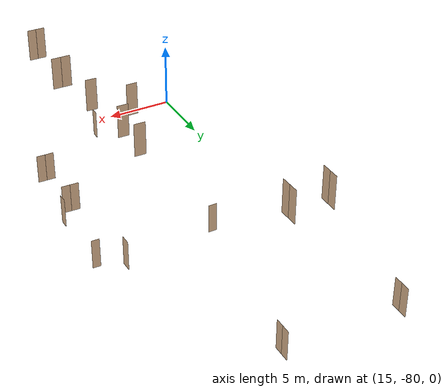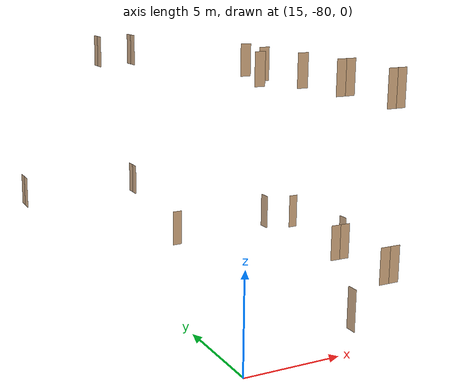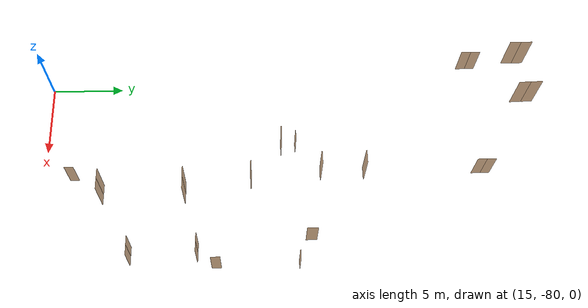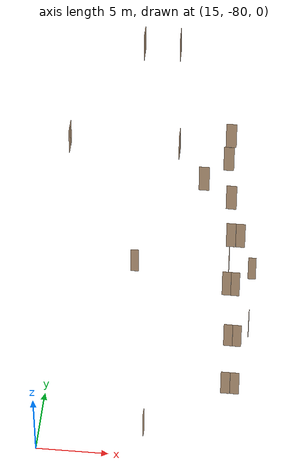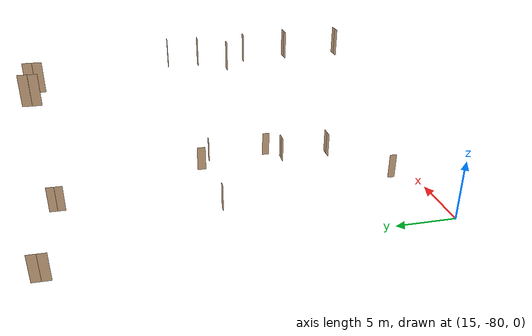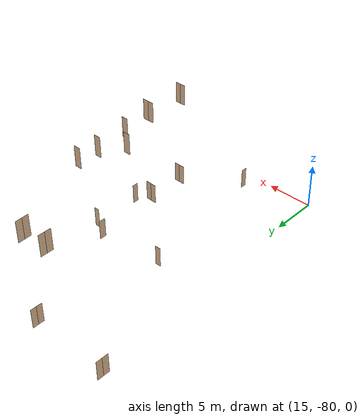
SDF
<sdf version="1.7">
 <world name="sim_world">
  <model name="door3">
   <pose>27.847318445650217 -73.7472066650835 0.0 0 0 3.1348896198746576</pose>
   <link name="right">
    <pose>0.3232117227131276 0 1.11 0 0 0</pose>
    <visual name="right_visual">
     <geometry><box><size>0.6364234454262552 0.03 2.2</size></box></geometry>
     <material>
      <ambient>0.5 0.25 0 0.6</ambient>
      <diffuse>0.5 0.25 0 0.6</diffuse>
      <pbr><metal><metalness>0.0</metalness></metal></pbr>
     </material>
    </visual>
    <collision name="right_collision">
     <geometry><box><size>0.6364234454262552 0.03 2.2</size></box></geometry>
     <surface><contact><collide_bitmask>0x02</collide_bitmask></contact></surface>
    </collision>
    <inertial>
     <mass>50.0</mass>
     <inertia><ixx>20.17041666666667</ixx><iyy>21.85431167453428</iyy><izz>1.6913950078676068</izz></inertia>
    </inertial>
   </link>
   <joint name="right_joint" type="revolute">
    <parent>world</parent>
    <child>right</child>
    <axis><xyz>0 0 1</xyz><limit><lower>0</lower><upper>1.57</upper></limit></axis>
    <pose>0.3232117227131276 0 0 0 0 0</pose>
   </joint>
   <link name="left">
    <pose>-0.3232117227131276 0 1.11 0 0 0</pose>
    <visual name="left_visual">
     <geometry><box><size>0.6364234454262552 0.03 2.2</size></box></geometry>
     <material>
      <ambient>0.5 0.25 0 0.6</ambient>
      <diffuse>0.5 0.25 0 0.6</diffuse>
      <pbr><metal><metalness>0.0</metalness></metal></pbr>
     </material>
    </visual>
    <collision name="left_collision">
     <geometry><box><size>0.6364234454262552 0.03 2.2</size></box></geometry>
     <surface><contact><collide_bitmask>0x02</collide_bitmask></contact></surface>
    </collision>
    <inertial>
     <mass>50.0</mass>
     <inertia><ixx>20.17041666666667</ixx><iyy>21.85431167453428</iyy><izz>1.6913950078676068</izz></inertia>
    </inertial>
   </link>
   <joint name="left_joint" type="revolute">
    <parent>world</parent>
    <child>left</child>
    <axis><xyz>0 0 1</xyz><limit><lower>-1.57</lower><upper>0</upper></limit></axis>
    <pose>-0.3232117227131276 0 0 0 0 0</pose>
   </joint>
   <plugin name="register_component" filename="libregister_component.so">
    <component name="Door">
     <v_max_door>0.5</v_max_door>
     <a_max_door>0.3</a_max_door>
     <a_nom_door>0.15</a_nom_door>
     <dx_min_door>0.01</dx_min_door>
     <f_max_door>500.0</f_max_door>
     <ros_interface>true</ros_interface>
     <door name="door3" type="DoubleSwingDoor" left_joint_name="left_joint" right_joint_name="right_joint"/>
    </component>
   </plugin>
  </model>
  <model name="door2">
   <pose>22.211782101604086 -77.9055350099353 0.0 0 0 1.5613574322392048</pose>
   <link name="right">
    <pose>0 0 1.11 0 0 0</pose>
    <visual name="right_visual">
     <geometry><box><size>0.6194818811056692 0.03 2.2</size></box></geometry>
     <material>
      <ambient>0.5 0.25 0 0.6</ambient>
      <diffuse>0.5 0.25 0 0.6</diffuse>
      <pbr><metal><metalness>0.0</metalness></metal></pbr>
     </material>
    </visual>
    <collision name="right_collision">
     <geometry><box><size>0.6194818811056692 0.03 2.2</size></box></geometry>
     <surface><contact><collide_bitmask>0x02</collide_bitmask></contact></surface>
    </collision>
    <inertial>
     <mass>50.0</mass>
     <inertia><ixx>20.17041666666667</ixx><iyy>21.76565750424258</iyy><izz>1.6027408375759102</izz></inertia>
    </inertial>
   </link>
   <joint name="right_joint" type="revolute">
    <parent>world</parent>
    <child>right</child>
    <axis><xyz>0 0 -1</xyz><limit><lower>0</lower><upper>1.57</upper></limit></axis>
    <pose>0.3147409405528346 0 0 0 0 0</pose>
   </joint>
   <plugin name="register_component" filename="libregister_component.so">
    <component name="Door">
     <v_max_door>0.5</v_max_door>
     <a_max_door>0.3</a_max_door>
     <a_nom_door>0.15</a_nom_door>
     <dx_min_door>0.01</dx_min_door>
     <f_max_door>500.0</f_max_door>
     <ros_interface>true</ros_interface>
     <door name="door2" type="SwingDoor" left_joint_name="empty_joint" right_joint_name="right_joint"/>
    </component>
   </plugin>
  </model>
  <model name="door4">
   <pose>27.7079244754704 -69.25606597808076 0.0 0 0 3.119050205000111</pose>
   <link name="right">
    <pose>0.3175972304814701 0 1.11 0 0 0</pose>
    <visual name="right_visual">
     <geometry><box><size>0.6251944609629402 0.03 2.2</size></box></geometry>
     <material>
      <ambient>0.5 0.25 0 0.6</ambient>
      <diffuse>0.5 0.25 0 0.6</diffuse>
      <pbr><metal><metalness>0.0</metalness></metal></pbr>
     </material>
    </visual>
    <collision name="right_collision">
     <geometry><box><size>0.6251944609629402 0.03 2.2</size></box></geometry>
     <surface><contact><collide_bitmask>0x02</collide_bitmask></contact></surface>
    </collision>
    <inertial>
     <mass>50.0</mass>
     <inertia><ixx>20.17041666666667</ixx><iyy>21.795283808411426</iyy><izz>1.6323671417447556</izz></inertia>
    </inertial>
   </link>
   <joint name="right_joint" type="revolute">
    <parent>world</parent>
    <child>right</child>
    <axis><xyz>0 0 -1</xyz><limit><lower>0</lower><upper>1.57</upper></limit></axis>
    <pose>0.3175972304814701 0 0 0 0 0</pose>
   </joint>
   <link name="left">
    <pose>-0.3175972304814701 0 1.11 0 0 0</pose>
    <visual name="left_visual">
     <geometry><box><size>0.6251944609629402 0.03 2.2</size></box></geometry>
     <material>
      <ambient>0.5 0.25 0 0.6</ambient>
      <diffuse>0.5 0.25 0 0.6</diffuse>
      <pbr><metal><metalness>0.0</metalness></metal></pbr>
     </material>
    </visual>
    <collision name="left_collision">
     <geometry><box><size>0.6251944609629402 0.03 2.2</size></box></geometry>
     <surface><contact><collide_bitmask>0x02</collide_bitmask></contact></surface>
    </collision>
    <inertial>
     <mass>50.0</mass>
     <inertia><ixx>20.17041666666667</ixx><iyy>21.795283808411426</iyy><izz>1.6323671417447556</izz></inertia>
    </inertial>
   </link>
   <joint name="left_joint" type="revolute">
    <parent>world</parent>
    <child>left</child>
    <axis><xyz>0 0 -1</xyz><limit><lower>-1.57</lower><upper>0</upper></limit></axis>
    <pose>-0.3175972304814701 0 0 0 0 0</pose>
   </joint>
   <plugin name="register_component" filename="libregister_component.so">
    <component name="Door">
     <v_max_door>0.5</v_max_door>
     <a_max_door>0.3</a_max_door>
     <a_nom_door>0.15</a_nom_door>
     <dx_min_door>0.01</dx_min_door>
     <f_max_door>500.0</f_max_door>
     <ros_interface>true</ros_interface>
     <door name="door4" type="DoubleSwingDoor" left_joint_name="left_joint" right_joint_name="right_joint"/>
    </component>
   </plugin>
  </model>
  <model name="door6">
   <pose>28.772399377181465 -67.984536180234 0.0 0 0 1.589006458082369</pose>
   <link name="right">
    <pose>0 0 1.11 0 0 0</pose>
    <visual name="right_visual">
     <geometry><box><size>0.633037573122654 0.03 2.2</size></box></geometry>
     <material>
      <ambient>0.5 0.25 0 0.6</ambient>
      <diffuse>0.5 0.25 0 0.6</diffuse>
      <pbr><metal><metalness>0.0</metalness></metal></pbr>
     </material>
    </visual>
    <collision name="right_collision">
     <geometry><box><size>0.633037573122654 0.03 2.2</size></box></geometry>
     <surface><contact><collide_bitmask>0x02</collide_bitmask></contact></surface>
    </collision>
    <inertial>
     <mass>50.0</mass>
     <inertia><ixx>20.17041666666667</ixx><iyy>21.83640237077092</iyy><izz>1.673485704104248</izz></inertia>
    </inertial>
   </link>
   <joint name="right_joint" type="revolute">
    <parent>world</parent>
    <child>right</child>
    <axis><xyz>0 0 -1</xyz><limit><lower>0</lower><upper>1.57</upper></limit></axis>
    <pose>0.321518786561327 0 0 0 0 0</pose>
   </joint>
   <plugin name="register_component" filename="libregister_component.so">
    <component name="Door">
     <v_max_door>0.5</v_max_door>
     <a_max_door>0.3</a_max_door>
     <a_nom_door>0.15</a_nom_door>
     <dx_min_door>0.01</dx_min_door>
     <f_max_door>500.0</f_max_door>
     <ros_interface>true</ros_interface>
     <door name="door6" type="SwingDoor" left_joint_name="empty_joint" right_joint_name="right_joint"/>
    </component>
   </plugin>
  </model>
  <model name="door7">
   <pose>20.006505440822856 -62.49707422929499 0.0 0 0 -3.117601081888637</pose>
   <link name="right">
    <pose>0 0 1.11 0 0 0</pose>
    <visual name="right_visual">
     <geometry><box><size>0.5964999086840153 0.03 2.2</size></box></geometry>
     <material>
      <ambient>0.5 0.25 0 0.6</ambient>
      <diffuse>0.5 0.25 0 0.6</diffuse>
      <pbr><metal><metalness>0.0</metalness></metal></pbr>
     </material>
    </visual>
    <collision name="right_collision">
     <geometry><box><size>0.5964999086840153 0.03 2.2</size></box></geometry>
     <surface><contact><collide_bitmask>0x02</collide_bitmask></contact></surface>
    </collision>
    <inertial>
     <mass>50.0</mass>
     <inertia><ixx>20.17041666666667</ixx><iyy>21.649217254416833</iyy><izz>1.4863005877501607</izz></inertia>
    </inertial>
   </link>
   <joint name="right_joint" type="revolute">
    <parent>world</parent>
    <child>right</child>
    <axis><xyz>0 0 -1</xyz><limit><lower>0</lower><upper>1.57</upper></limit></axis>
    <pose>0.30324995434200763 0 0 0 0 0</pose>
   </joint>
   <plugin name="register_component" filename="libregister_component.so">
    <component name="Door">
     <v_max_door>0.5</v_max_door>
     <a_max_door>0.3</a_max_door>
     <a_nom_door>0.15</a_nom_door>
     <dx_min_door>0.01</dx_min_door>
     <f_max_door>500.0</f_max_door>
     <ros_interface>true</ros_interface>
     <door name="door7" type="SwingDoor" left_joint_name="empty_joint" right_joint_name="right_joint"/>
    </component>
   </plugin>
  </model>
  <model name="door8">
   <pose>28.657583031850905 -62.48891550123477 0.0 0 0 -3.138557686043698</pose>
   <link name="right">
    <pose>0 0 1.11 0 0 0</pose>
    <visual name="right_visual">
     <geometry><box><size>0.5725329680564498 0.03 2.2</size></box></geometry>
     <material>
      <ambient>0.5 0.25 0 0.6</ambient>
      <diffuse>0.5 0.25 0 0.6</diffuse>
      <pbr><metal><metalness>0.0</metalness></metal></pbr>
     </material>
    </visual>
    <collision name="right_collision">
     <geometry><box><size>0.5725329680564498 0.03 2.2</size></box></geometry>
     <surface><contact><collide_bitmask>0x02</collide_bitmask></contact></surface>
    </collision>
    <inertial>
     <mass>50.0</mass>
     <inertia><ixx>20.17041666666667</ixx><iyy>21.5324749979647</iyy><izz>1.3695583312980326</izz></inertia>
    </inertial>
   </link>
   <joint name="right_joint" type="revolute">
    <parent>world</parent>
    <child>right</child>
    <axis><xyz>0 0 1</xyz><limit><lower>0</lower><upper>1.57</upper></limit></axis>
    <pose>0.2912664840282249 0 0 0 0 0</pose>
   </joint>
   <plugin name="register_component" filename="libregister_component.so">
    <component name="Door">
     <v_max_door>0.5</v_max_door>
     <a_max_door>0.3</a_max_door>
     <a_nom_door>0.15</a_nom_door>
     <dx_min_door>0.01</dx_min_door>
     <f_max_door>500.0</f_max_door>
     <ros_interface>true</ros_interface>
     <door name="door8" type="SwingDoor" left_joint_name="empty_joint" right_joint_name="right_joint"/>
    </component>
   </plugin>
  </model>
  <model name="door11">
   <pose>26.91586124352129 -61.62542354706751 0.0 0 0 1.590140119046647</pose>
   <link name="right">
    <pose>0 0 1.11 0 0 0</pose>
    <visual name="right_visual">
     <geometry><box><size>0.748193471785033 0.03 2.2</size></box></geometry>
     <material>
      <ambient>0.5 0.25 0 0.6</ambient>
      <diffuse>0.5 0.25 0 0.6</diffuse>
      <pbr><metal><metalness>0.0</metalness></metal></pbr>
     </material>
    </visual>
    <collision name="right_collision">
     <geometry><box><size>0.748193471785033 0.03 2.2</size></box></geometry>
     <surface><contact><collide_bitmask>0x02</collide_bitmask></contact></surface>
    </collision>
    <inertial>
     <mass>50.0</mass>
     <inertia><ixx>20.17041666666667</ixx><iyy>22.499139463423923</iyy><izz>2.3362227967572546</izz></inertia>
    </inertial>
   </link>
   <joint name="right_joint" type="revolute">
    <parent>world</parent>
    <child>right</child>
    <axis><xyz>0 0 1</xyz><limit><lower>0</lower><upper>1.57</upper></limit></axis>
    <pose>0.3790967358925165 0 0 0 0 0</pose>
   </joint>
   <plugin name="register_component" filename="libregister_component.so">
    <component name="Door">
     <v_max_door>0.5</v_max_door>
     <a_max_door>0.3</a_max_door>
     <a_nom_door>0.15</a_nom_door>
     <dx_min_door>0.01</dx_min_door>
     <f_max_door>500.0</f_max_door>
     <ros_interface>true</ros_interface>
     <door name="door11" type="SwingDoor" left_joint_name="empty_joint" right_joint_name="right_joint"/>
    </component>
   </plugin>
  </model>
  <model name="door21_end">
   <pose>22.19549362853182 -49.59114025148065 0.0 0 0 1.5724148541161638</pose>
   <link name="right">
    <pose>0.3178502598575547 0 1.11 0 0 0</pose>
    <visual name="right_visual">
     <geometry><box><size>0.6257005197151094 0.03 2.2</size></box></geometry>
     <material>
      <ambient>0.5 0.25 0 0.6</ambient>
      <diffuse>0.5 0.25 0 0.6</diffuse>
      <pbr><metal><metalness>0.0</metalness></metal></pbr>
     </material>
    </visual>
    <collision name="right_collision">
     <geometry><box><size>0.6257005197151094 0.03 2.2</size></box></geometry>
     <surface><contact><collide_bitmask>0x02</collide_bitmask></contact></surface>
    </collision>
    <inertial>
     <mass>50.0</mass>
     <inertia><ixx>20.17041666666667</ixx><iyy>21.79792141821566</iyy><izz>1.635004751548992</izz></inertia>
    </inertial>
   </link>
   <joint name="right_joint" type="revolute">
    <parent>world</parent>
    <child>right</child>
    <axis><xyz>0 0 -1</xyz><limit><lower>0</lower><upper>1.57</upper></limit></axis>
    <pose>0.3178502598575547 0 0 0 0 0</pose>
   </joint>
   <link name="left">
    <pose>-0.3178502598575547 0 1.11 0 0 0</pose>
    <visual name="left_visual">
     <geometry><box><size>0.6257005197151094 0.03 2.2</size></box></geometry>
     <material>
      <ambient>0.5 0.25 0 0.6</ambient>
      <diffuse>0.5 0.25 0 0.6</diffuse>
      <pbr><metal><metalness>0.0</metalness></metal></pbr>
     </material>
    </visual>
    <collision name="left_collision">
     <geometry><box><size>0.6257005197151094 0.03 2.2</size></box></geometry>
     <surface><contact><collide_bitmask>0x02</collide_bitmask></contact></surface>
    </collision>
    <inertial>
     <mass>50.0</mass>
     <inertia><ixx>20.17041666666667</ixx><iyy>21.79792141821566</iyy><izz>1.635004751548992</izz></inertia>
    </inertial>
   </link>
   <joint name="left_joint" type="revolute">
    <parent>world</parent>
    <child>left</child>
    <axis><xyz>0 0 -1</xyz><limit><lower>-1.57</lower><upper>0</upper></limit></axis>
    <pose>-0.3178502598575547 0 0 0 0 0</pose>
   </joint>
   <plugin name="register_component" filename="libregister_component.so">
    <component name="Door">
     <v_max_door>0.5</v_max_door>
     <a_max_door>0.3</a_max_door>
     <a_nom_door>0.15</a_nom_door>
     <dx_min_door>0.01</dx_min_door>
     <f_max_door>500.0</f_max_door>
     <ros_interface>true</ros_interface>
     <door name="door21_end" type="DoubleSwingDoor" left_joint_name="left_joint" right_joint_name="right_joint"/>
    </component>
   </plugin>
  </model>
  <model name="door19">
   <pose>13.633176622528351 -49.584706014786626 0.0 0 0 1.5709468288255375</pose>
   <link name="right">
    <pose>0.3370076421904802 0 1.11 0 0 0</pose>
    <visual name="right_visual">
     <geometry><box><size>0.6640152843809604 0.03 2.2</size></box></geometry>
     <material>
      <ambient>0.5 0.25 0 0.6</ambient>
      <diffuse>0.5 0.25 0 0.6</diffuse>
      <pbr><metal><metalness>0.0</metalness></metal></pbr>
     </material>
    </visual>
    <collision name="right_collision">
     <geometry><box><size>0.6640152843809604 0.03 2.2</size></box></geometry>
     <surface><contact><collide_bitmask>0x02</collide_bitmask></contact></surface>
    </collision>
    <inertial>
     <mass>50.0</mass>
     <inertia><ixx>20.17041666666667</ixx><iyy>22.00381790788137</iyy><izz>1.8409012412146988</izz></inertia>
    </inertial>
   </link>
   <joint name="right_joint" type="revolute">
    <parent>world</parent>
    <child>right</child>
    <axis><xyz>0 0 -1</xyz><limit><lower>0</lower><upper>1.57</upper></limit></axis>
    <pose>0.3370076421904802 0 0 0 0 0</pose>
   </joint>
   <link name="left">
    <pose>-0.3370076421904802 0 1.11 0 0 0</pose>
    <visual name="left_visual">
     <geometry><box><size>0.6640152843809604 0.03 2.2</size></box></geometry>
     <material>
      <ambient>0.5 0.25 0 0.6</ambient>
      <diffuse>0.5 0.25 0 0.6</diffuse>
      <pbr><metal><metalness>0.0</metalness></metal></pbr>
     </material>
    </visual>
    <collision name="left_collision">
     <geometry><box><size>0.6640152843809604 0.03 2.2</size></box></geometry>
     <surface><contact><collide_bitmask>0x02</collide_bitmask></contact></surface>
    </collision>
    <inertial>
     <mass>50.0</mass>
     <inertia><ixx>20.17041666666667</ixx><iyy>22.00381790788137</iyy><izz>1.8409012412146988</izz></inertia>
    </inertial>
   </link>
   <joint name="left_joint" type="revolute">
    <parent>world</parent>
    <child>left</child>
    <axis><xyz>0 0 -1</xyz><limit><lower>-1.57</lower><upper>0</upper></limit></axis>
    <pose>-0.3370076421904802 0 0 0 0 0</pose>
   </joint>
   <plugin name="register_component" filename="libregister_component.so">
    <component name="Door">
     <v_max_door>0.5</v_max_door>
     <a_max_door>0.3</a_max_door>
     <a_nom_door>0.15</a_nom_door>
     <dx_min_door>0.01</dx_min_door>
     <f_max_door>500.0</f_max_door>
     <ros_interface>true</ros_interface>
     <door name="door19" type="DoubleSwingDoor" left_joint_name="left_joint" right_joint_name="right_joint"/>
    </component>
   </plugin>
  </model>
  <model name="N1_door2">
   <pose>27.66805272260334 -73.75293895608013 10.0 0 0 3.134782744586234</pose>
   <link name="right">
    <pose>0.293878937184789 0 1.11 0 0 0</pose>
    <visual name="right_visual">
     <geometry><box><size>0.577757874369578 0.03 2.2</size></box></geometry>
     <material>
      <ambient>0.5 0.25 0 0.6</ambient>
      <diffuse>0.5 0.25 0 0.6</diffuse>
      <pbr><metal><metalness>0.0</metalness></metal></pbr>
     </material>
    </visual>
    <collision name="right_collision">
     <geometry><box><size>0.577757874369578 0.03 2.2</size></box></geometry>
     <surface><contact><collide_bitmask>0x02</collide_bitmask></contact></surface>
    </collision>
    <inertial>
     <mass>50.0</mass>
     <inertia><ixx>20.17041666666667</ixx><iyy>21.557517339150223</iyy><izz>1.394600672483555</izz></inertia>
    </inertial>
   </link>
   <joint name="right_joint" type="revolute">
    <parent>world</parent>
    <child>right</child>
    <axis><xyz>0 0 1</xyz><limit><lower>0</lower><upper>1.57</upper></limit></axis>
    <pose>0.293878937184789 0 0 0 0 0</pose>
   </joint>
   <link name="left">
    <pose>-0.293878937184789 0 1.11 0 0 0</pose>
    <visual name="left_visual">
     <geometry><box><size>0.577757874369578 0.03 2.2</size></box></geometry>
     <material>
      <ambient>0.5 0.25 0 0.6</ambient>
      <diffuse>0.5 0.25 0 0.6</diffuse>
      <pbr><metal><metalness>0.0</metalness></metal></pbr>
     </material>
    </visual>
    <collision name="left_collision">
     <geometry><box><size>0.577757874369578 0.03 2.2</size></box></geometry>
     <surface><contact><collide_bitmask>0x02</collide_bitmask></contact></surface>
    </collision>
    <inertial>
     <mass>50.0</mass>
     <inertia><ixx>20.17041666666667</ixx><iyy>21.557517339150223</iyy><izz>1.394600672483555</izz></inertia>
    </inertial>
   </link>
   <joint name="left_joint" type="revolute">
    <parent>world</parent>
    <child>left</child>
    <axis><xyz>0 0 1</xyz><limit><lower>-1.57</lower><upper>0</upper></limit></axis>
    <pose>-0.293878937184789 0 0 0 0 0</pose>
   </joint>
   <plugin name="register_component" filename="libregister_component.so">
    <component name="Door">
     <v_max_door>0.5</v_max_door>
     <a_max_door>0.3</a_max_door>
     <a_nom_door>0.15</a_nom_door>
     <dx_min_door>0.01</dx_min_door>
     <f_max_door>500.0</f_max_door>
     <ros_interface>true</ros_interface>
     <door name="N1_door2" type="DoubleSwingDoor" left_joint_name="left_joint" right_joint_name="right_joint"/>
    </component>
   </plugin>
  </model>
  <model name="N1_door4">
   <pose>27.66901645585712 -69.17747448492554 10.0 0 0 -3.1410845969289958</pose>
   <link name="right">
    <pose>0.3217449040681913 0 1.11 0 0 0</pose>
    <visual name="right_visual">
     <geometry><box><size>0.6334898081363826 0.03 2.2</size></box></geometry>
     <material>
      <ambient>0.5 0.25 0 0.6</ambient>
      <diffuse>0.5 0.25 0 0.6</diffuse>
      <pbr><metal><metalness>0.0</metalness></metal></pbr>
     </material>
    </visual>
    <collision name="right_collision">
     <geometry><box><size>0.6334898081363826 0.03 2.2</size></box></geometry>
     <surface><contact><collide_bitmask>0x02</collide_bitmask></contact></surface>
    </collision>
    <inertial>
     <mass>50.0</mass>
     <inertia><ixx>20.17041666666667</ixx><iyy>21.838788904219467</iyy><izz>1.6758722375527952</izz></inertia>
    </inertial>
   </link>
   <joint name="right_joint" type="revolute">
    <parent>world</parent>
    <child>right</child>
    <axis><xyz>0 0 -1</xyz><limit><lower>0</lower><upper>1.57</upper></limit></axis>
    <pose>0.3217449040681913 0 0 0 0 0</pose>
   </joint>
   <link name="left">
    <pose>-0.3217449040681913 0 1.11 0 0 0</pose>
    <visual name="left_visual">
     <geometry><box><size>0.6334898081363826 0.03 2.2</size></box></geometry>
     <material>
      <ambient>0.5 0.25 0 0.6</ambient>
      <diffuse>0.5 0.25 0 0.6</diffuse>
      <pbr><metal><metalness>0.0</metalness></metal></pbr>
     </material>
    </visual>
    <collision name="left_collision">
     <geometry><box><size>0.6334898081363826 0.03 2.2</size></box></geometry>
     <surface><contact><collide_bitmask>0x02</collide_bitmask></contact></surface>
    </collision>
    <inertial>
     <mass>50.0</mass>
     <inertia><ixx>20.17041666666667</ixx><iyy>21.838788904219467</iyy><izz>1.6758722375527952</izz></inertia>
    </inertial>
   </link>
   <joint name="left_joint" type="revolute">
    <parent>world</parent>
    <child>left</child>
    <axis><xyz>0 0 -1</xyz><limit><lower>-1.57</lower><upper>0</upper></limit></axis>
    <pose>-0.3217449040681913 0 0 0 0 0</pose>
   </joint>
   <plugin name="register_component" filename="libregister_component.so">
    <component name="Door">
     <v_max_door>0.5</v_max_door>
     <a_max_door>0.3</a_max_door>
     <a_nom_door>0.15</a_nom_door>
     <dx_min_door>0.01</dx_min_door>
     <f_max_door>500.0</f_max_door>
     <ros_interface>true</ros_interface>
     <door name="N1_door4" type="DoubleSwingDoor" left_joint_name="left_joint" right_joint_name="right_joint"/>
    </component>
   </plugin>
  </model>
  <model name="N1_door5">
   <pose>27.111255211262197 -65.51093427778248 10.0 0 0 3.1066954294134708</pose>
   <link name="right">
    <pose>0 0 1.11 0 0 0</pose>
    <visual name="right_visual">
     <geometry><box><size>0.7252785671526952 0.03 2.2</size></box></geometry>
     <material>
      <ambient>0.5 0.25 0 0.6</ambient>
      <diffuse>0.5 0.25 0 0.6</diffuse>
      <pbr><metal><metalness>0.0</metalness></metal></pbr>
     </material>
    </visual>
    <collision name="right_collision">
     <geometry><box><size>0.7252785671526952 0.03 2.2</size></box></geometry>
     <surface><contact><collide_bitmask>0x02</collide_bitmask></contact></surface>
    </collision>
    <inertial>
     <mass>50.0</mass>
     <inertia><ixx>20.17041666666667</ixx><iyy>22.358454166546117</iyy><izz>2.195537499879445</izz></inertia>
    </inertial>
   </link>
   <joint name="right_joint" type="revolute">
    <parent>world</parent>
    <child>right</child>
    <axis><xyz>0 0 1</xyz><limit><lower>0</lower><upper>1.57</upper></limit></axis>
    <pose>0.3676392835763476 0 0 0 0 0</pose>
   </joint>
   <plugin name="register_component" filename="libregister_component.so">
    <component name="Door">
     <v_max_door>0.5</v_max_door>
     <a_max_door>0.3</a_max_door>
     <a_nom_door>0.15</a_nom_door>
     <dx_min_door>0.01</dx_min_door>
     <f_max_door>500.0</f_max_door>
     <ros_interface>true</ros_interface>
     <door name="N1_door5" type="SwingDoor" left_joint_name="empty_joint" right_joint_name="right_joint"/>
    </component>
   </plugin>
  </model>
  <model name="N1_door6">
   <pose>25.078748379190476 -63.800374709203716 10.0 0 0 3.139541598057543</pose>
   <link name="right">
    <pose>0 0 1.11 0 0 0</pose>
    <visual name="right_visual">
     <geometry><box><size>0.7244574615231434 0.03 2.2</size></box></geometry>
     <material>
      <ambient>0.5 0.25 0 0.6</ambient>
      <diffuse>0.5 0.25 0 0.6</diffuse>
      <pbr><metal><metalness>0.0</metalness></metal></pbr>
     </material>
    </visual>
    <collision name="right_collision">
     <geometry><box><size>0.7244574615231434 0.03 2.2</size></box></geometry>
     <surface><contact><collide_bitmask>0x02</collide_bitmask></contact></surface>
    </collision>
    <inertial>
     <mass>50.0</mass>
     <inertia><ixx>20.17041666666667</ixx><iyy>22.353494223152325</iyy><izz>2.1905775564856538</izz></inertia>
    </inertial>
   </link>
   <joint name="right_joint" type="revolute">
    <parent>world</parent>
    <child>right</child>
    <axis><xyz>0 0 1</xyz><limit><lower>0</lower><upper>1.57</upper></limit></axis>
    <pose>0.3672287307615717 0 0 0 0 0</pose>
   </joint>
   <plugin name="register_component" filename="libregister_component.so">
    <component name="Door">
     <v_max_door>0.5</v_max_door>
     <a_max_door>0.3</a_max_door>
     <a_nom_door>0.15</a_nom_door>
     <dx_min_door>0.01</dx_min_door>
     <f_max_door>500.0</f_max_door>
     <ros_interface>true</ros_interface>
     <door name="N1_door6" type="SwingDoor" left_joint_name="empty_joint" right_joint_name="right_joint"/>
    </component>
   </plugin>
  </model>
  <model name="N1_door7">
   <pose>26.658464187676415 -61.62692948139044 10.0 0 0 3.1415150719717517</pose>
   <link name="right">
    <pose>0 0 1.11 0 0 0</pose>
    <visual name="right_visual">
     <geometry><box><size>0.7269780424738533 0.03 2.2</size></box></geometry>
     <material>
      <ambient>0.5 0.25 0 0.6</ambient>
      <diffuse>0.5 0.25 0 0.6</diffuse>
      <pbr><metal><metalness>0.0</metalness></metal></pbr>
     </material>
    </visual>
    <collision name="right_collision">
     <geometry><box><size>0.7269780424738533 0.03 2.2</size></box></geometry>
     <surface><contact><collide_bitmask>0x02</collide_bitmask></contact></surface>
    </collision>
    <inertial>
     <mass>50.0</mass>
     <inertia><ixx>20.17041666666667</ixx><iyy>22.368737809329655</iyy><izz>2.2058211426629826</izz></inertia>
    </inertial>
   </link>
   <joint name="right_joint" type="revolute">
    <parent>world</parent>
    <child>right</child>
    <axis><xyz>0 0 -1</xyz><limit><lower>0</lower><upper>1.57</upper></limit></axis>
    <pose>0.3684890212369267 0 0 0 0 0</pose>
   </joint>
   <plugin name="register_component" filename="libregister_component.so">
    <component name="Door">
     <v_max_door>0.5</v_max_door>
     <a_max_door>0.3</a_max_door>
     <a_nom_door>0.15</a_nom_door>
     <dx_min_door>0.01</dx_min_door>
     <f_max_door>500.0</f_max_door>
     <ros_interface>true</ros_interface>
     <door name="N1_door7" type="SwingDoor" left_joint_name="empty_joint" right_joint_name="right_joint"/>
    </component>
   </plugin>
  </model>
  <model name="N1_door8">
   <pose>26.65343413402863 -59.2049577008368 10.0 0 0 3.1304192962431787</pose>
   <link name="right">
    <pose>0 0 1.11 0 0 0</pose>
    <visual name="right_visual">
     <geometry><box><size>0.7476645898188771 0.03 2.2</size></box></geometry>
     <material>
      <ambient>0.5 0.25 0 0.6</ambient>
      <diffuse>0.5 0.25 0 0.6</diffuse>
      <pbr><metal><metalness>0.0</metalness></metal></pbr>
     </material>
    </visual>
    <collision name="right_collision">
     <geometry><box><size>0.7476645898188771 0.03 2.2</size></box></geometry>
     <surface><contact><collide_bitmask>0x02</collide_bitmask></contact></surface>
    </collision>
    <inertial>
     <mass>50.0</mass>
     <inertia><ixx>20.17041666666667</ixx><iyy>22.49584307862096</iyy><izz>2.3329264119542907</izz></inertia>
    </inertial>
   </link>
   <joint name="right_joint" type="revolute">
    <parent>world</parent>
    <child>right</child>
    <axis><xyz>0 0 1</xyz><limit><lower>0</lower><upper>1.57</upper></limit></axis>
    <pose>0.37883229490943854 0 0 0 0 0</pose>
   </joint>
   <plugin name="register_component" filename="libregister_component.so">
    <component name="Door">
     <v_max_door>0.5</v_max_door>
     <a_max_door>0.3</a_max_door>
     <a_nom_door>0.15</a_nom_door>
     <dx_min_door>0.01</dx_min_door>
     <f_max_door>500.0</f_max_door>
     <ros_interface>true</ros_interface>
     <door name="N1_door8" type="SwingDoor" left_joint_name="empty_joint" right_joint_name="right_joint"/>
    </component>
   </plugin>
  </model>
  <model name="N1_door14">
   <pose>19.51158851930837 -49.71285808239192 10.0 0 0 1.5759770829311652</pose>
   <link name="right">
    <pose>0.3197490536856404 0 1.11 0 0 0</pose>
    <visual name="right_visual">
     <geometry><box><size>0.6294981073712808 0.03 2.2</size></box></geometry>
     <material>
      <ambient>0.5 0.25 0 0.6</ambient>
      <diffuse>0.5 0.25 0 0.6</diffuse>
      <pbr><metal><metalness>0.0</metalness></metal></pbr>
     </material>
    </visual>
    <collision name="right_collision">
     <geometry><box><size>0.6294981073712808 0.03 2.2</size></box></geometry>
     <surface><contact><collide_bitmask>0x02</collide_bitmask></contact></surface>
    </collision>
    <inertial>
     <mass>50.0</mass>
     <inertia><ixx>20.17041666666667</ixx><iyy>21.81778277993344</iyy><izz>1.654866113266769</izz></inertia>
    </inertial>
   </link>
   <joint name="right_joint" type="revolute">
    <parent>world</parent>
    <child>right</child>
    <axis><xyz>0 0 -1</xyz><limit><lower>0</lower><upper>1.57</upper></limit></axis>
    <pose>0.3197490536856404 0 0 0 0 0</pose>
   </joint>
   <link name="left">
    <pose>-0.3197490536856404 0 1.11 0 0 0</pose>
    <visual name="left_visual">
     <geometry><box><size>0.6294981073712808 0.03 2.2</size></box></geometry>
     <material>
      <ambient>0.5 0.25 0 0.6</ambient>
      <diffuse>0.5 0.25 0 0.6</diffuse>
      <pbr><metal><metalness>0.0</metalness></metal></pbr>
     </material>
    </visual>
    <collision name="left_collision">
     <geometry><box><size>0.6294981073712808 0.03 2.2</size></box></geometry>
     <surface><contact><collide_bitmask>0x02</collide_bitmask></contact></surface>
    </collision>
    <inertial>
     <mass>50.0</mass>
     <inertia><ixx>20.17041666666667</ixx><iyy>21.81778277993344</iyy><izz>1.654866113266769</izz></inertia>
    </inertial>
   </link>
   <joint name="left_joint" type="revolute">
    <parent>world</parent>
    <child>left</child>
    <axis><xyz>0 0 -1</xyz><limit><lower>-1.57</lower><upper>0</upper></limit></axis>
    <pose>-0.3197490536856404 0 0 0 0 0</pose>
   </joint>
   <plugin name="register_component" filename="libregister_component.so">
    <component name="Door">
     <v_max_door>0.5</v_max_door>
     <a_max_door>0.3</a_max_door>
     <a_nom_door>0.15</a_nom_door>
     <dx_min_door>0.01</dx_min_door>
     <f_max_door>500.0</f_max_door>
     <ros_interface>true</ros_interface>
     <door name="N1_door14" type="DoubleSwingDoor" left_joint_name="left_joint" right_joint_name="right_joint"/>
    </component>
   </plugin>
  </model>
  <model name="N1_door15">
   <pose>22.18606155783882 -49.575644952393105 10.0 0 0 1.5974154342430706</pose>
   <link name="right">
    <pose>0.3295950133997842 0 1.11 0 0 0</pose>
    <visual name="right_visual">
     <geometry><box><size>0.6491900267995684 0.03 2.2</size></box></geometry>
     <material>
      <ambient>0.5 0.25 0 0.6</ambient>
      <diffuse>0.5 0.25 0 0.6</diffuse>
      <pbr><metal><metalness>0.0</metalness></metal></pbr>
     </material>
    </visual>
    <collision name="right_collision">
     <geometry><box><size>0.6491900267995684 0.03 2.2</size></box></geometry>
     <surface><contact><collide_bitmask>0x02</collide_bitmask></contact></surface>
    </collision>
    <inertial>
     <mass>50.0</mass>
     <inertia><ixx>20.17041666666667</ixx><iyy>21.922698712066772</iyy><izz>1.7597820454001014</izz></inertia>
    </inertial>
   </link>
   <joint name="right_joint" type="revolute">
    <parent>world</parent>
    <child>right</child>
    <axis><xyz>0 0 -1</xyz><limit><lower>0</lower><upper>1.57</upper></limit></axis>
    <pose>0.3295950133997842 0 0 0 0 0</pose>
   </joint>
   <link name="left">
    <pose>-0.3295950133997842 0 1.11 0 0 0</pose>
    <visual name="left_visual">
     <geometry><box><size>0.6491900267995684 0.03 2.2</size></box></geometry>
     <material>
      <ambient>0.5 0.25 0 0.6</ambient>
      <diffuse>0.5 0.25 0 0.6</diffuse>
      <pbr><metal><metalness>0.0</metalness></metal></pbr>
     </material>
    </visual>
    <collision name="left_collision">
     <geometry><box><size>0.6491900267995684 0.03 2.2</size></box></geometry>
     <surface><contact><collide_bitmask>0x02</collide_bitmask></contact></surface>
    </collision>
    <inertial>
     <mass>50.0</mass>
     <inertia><ixx>20.17041666666667</ixx><iyy>21.922698712066772</iyy><izz>1.7597820454001014</izz></inertia>
    </inertial>
   </link>
   <joint name="left_joint" type="revolute">
    <parent>world</parent>
    <child>left</child>
    <axis><xyz>0 0 -1</xyz><limit><lower>-1.57</lower><upper>0</upper></limit></axis>
    <pose>-0.3295950133997842 0 0 0 0 0</pose>
   </joint>
   <plugin name="register_component" filename="libregister_component.so">
    <component name="Door">
     <v_max_door>0.5</v_max_door>
     <a_max_door>0.3</a_max_door>
     <a_nom_door>0.15</a_nom_door>
     <dx_min_door>0.01</dx_min_door>
     <f_max_door>500.0</f_max_door>
     <ros_interface>true</ros_interface>
     <door name="N1_door15" type="DoubleSwingDoor" left_joint_name="left_joint" right_joint_name="right_joint"/>
    </component>
   </plugin>
  </model>
 </world>
</sdf>
